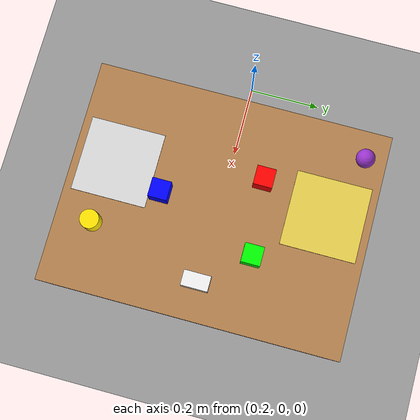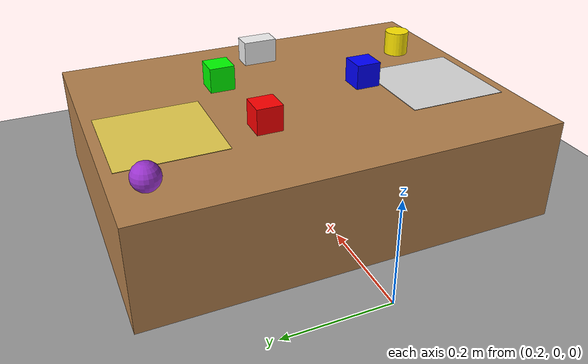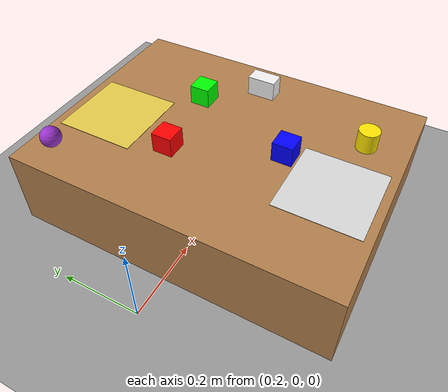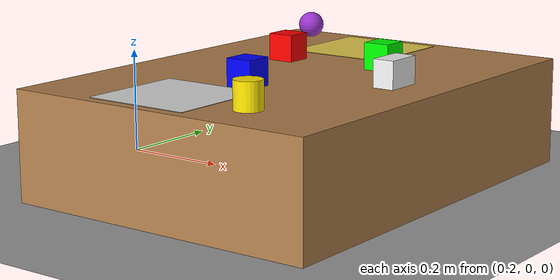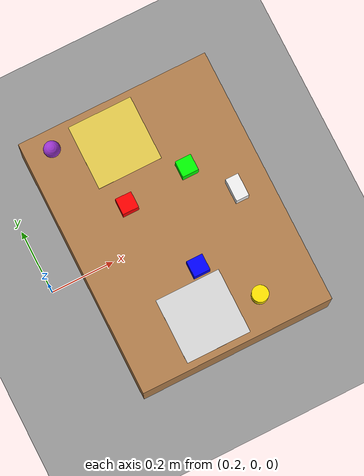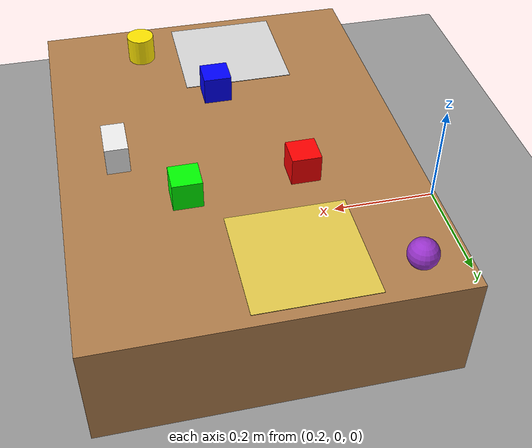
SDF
<?xml version="1.0"?>
<sdf version="1.9">
  <world name="pick_place">
    <physics name="fine" type="dart"><max_step_size>0.002</max_step_size></physics>
    <plugin filename="gz-sim-physics-system" name="gz::sim::systems::Physics"/>
    <plugin filename="gz-sim-user-commands-system" name="gz::sim::systems::UserCommands"/>
    <plugin filename="gz-sim-scene-broadcaster-system" name="gz::sim::systems::SceneBroadcaster"/>
    <plugin filename="gz-sim-sensors-system" name="gz::sim::systems::Sensors">
      <render_engine>ogre2</render_engine>
    </plugin>
    <light type="directional" name="sun">
      <pose>0 0 5 0 0 0</pose>
      <direction>-0.3 0.2 -1</direction>
      <diffuse>1 1 1 1</diffuse>
    </light>
    <model name="ground">
      <static>true</static>
      <link name="link">
        <collision name="c"><geometry><plane><normal>0 0 1</normal><size>10 10</size></plane></geometry></collision>
        <visual name="v"><geometry><plane><normal>0 0 1</normal><size>10 10</size></plane></geometry>
          <material><diffuse>0.6 0.6 0.6 1</diffuse></material></visual>
      </link>
    </model>
    <model name="table">
      <static>true</static>
      <pose>0.6 0 0.1 0 0 0</pose>
      <link name="link">
        <collision name="c"><geometry><box><size>0.6 0.8 0.2</size></box></geometry></collision>
        <visual name="v"><geometry><box><size>0.6 0.8 0.2</size></box></geometry>
          <material><diffuse>0.7 0.5 0.3 1</diffuse></material></visual>
      </link>
    </model>
    <!-- Zone pads: visual only (no collision), 0.20 x 0.20 m. Centres must match ZONE_CENTERS in agent.py.
         Colours are yellow / light grey so the red/green/blue detector ignores them. -->
    <model name="zone_left">
      <static>true</static>
      <pose>0.55 0.28 0.2005 0 0 0</pose>
      <link name="link">
        <visual name="v"><geometry><box><size>0.2 0.2 0.001</size></box></geometry>
          <material><diffuse>0.9 0.8 0.3 1</diffuse></material></visual>
      </link>
    </model>
    <model name="zone_right">
      <static>true</static>
      <pose>0.55 -0.28 0.2005 0 0 0</pose>
      <link name="link">
        <visual name="v"><geometry><box><size>0.2 0.2 0.001</size></box></geometry>
          <material><diffuse>0.85 0.85 0.85 1</diffuse></material></visual>
      </link>
    </model>
    <!-- All movable objects have gravity ON so they rest on the table or on each other and a disturbance dies out
         through friction. Heavy damping (velocity_decay) keeps knocks small. -->
    <model name="red_cube">
      <pose>0.5 0.1 0.225 0 0 0</pose>
      <link name="link">
        <gravity>true</gravity>
        <velocity_decay><linear>1.0</linear><angular>1.0</angular></velocity_decay>
        <inertial><mass>0.1</mass><inertia><ixx>4e-5</ixx><iyy>4e-5</iyy><izz>4e-5</izz></inertia></inertial>
        <collision name="c"><geometry><box><size>0.05 0.05 0.05</size></box></geometry>
          <surface>
            <friction><ode><mu>3.0</mu><mu2>3.0</mu2></ode></friction>
            <contact><ode><kp>1e6</kp><kd>100</kd><max_vel>0.1</max_vel><min_depth>0.001</min_depth></ode></contact>
          </surface></collision>
        <visual name="v"><geometry><box><size>0.05 0.05 0.05</size></box></geometry>
          <material><diffuse>1 0 0 1</diffuse></material></visual>
      </link>
    </model>
    <model name="blue_cube">
      <pose>0.6 -0.15 0.225 0 0 0</pose>
      <link name="link">
        <gravity>true</gravity>
        <velocity_decay><linear>1.0</linear><angular>1.0</angular></velocity_decay>
        <inertial><mass>0.1</mass><inertia><ixx>4e-5</ixx><iyy>4e-5</iyy><izz>4e-5</izz></inertia></inertial>
        <collision name="c"><geometry><box><size>0.05 0.05 0.05</size></box></geometry>
          <surface>
            <friction><ode><mu>3.0</mu><mu2>3.0</mu2></ode></friction>
            <contact><ode><kp>1e6</kp><kd>100</kd><max_vel>0.1</max_vel><min_depth>0.001</min_depth></ode></contact>
          </surface></collision>
        <visual name="v"><geometry><box><size>0.05 0.05 0.05</size></box></geometry>
          <material><diffuse>0 0 1 1</diffuse></material></visual>
      </link>
    </model>
    <model name="green_cube">
      <pose>0.7 0.12 0.225 0 0 0</pose>
      <link name="link">
        <gravity>true</gravity>
        <velocity_decay><linear>1.0</linear><angular>1.0</angular></velocity_decay>
        <inertial><mass>0.1</mass><inertia><ixx>4e-5</ixx><iyy>4e-5</iyy><izz>4e-5</izz></inertia></inertial>
        <collision name="c"><geometry><box><size>0.05 0.05 0.05</size></box></geometry>
          <surface>
            <friction><ode><mu>3.0</mu><mu2>3.0</mu2></ode></friction>
            <contact><ode><kp>1e6</kp><kd>100</kd><max_vel>0.1</max_vel><min_depth>0.001</min_depth></ode></contact>
          </surface></collision>
        <visual name="v"><geometry><box><size>0.05 0.05 0.05</size></box></geometry>
          <material><diffuse>0 1 0 1</diffuse></material></visual>
      </link>
    </model>
    <model name="yellow_can">
      <pose>0.72 -0.30 0.225 0 0 0</pose>
      <link name="link">
        <gravity>true</gravity>
        <velocity_decay><linear>1.0</linear><angular>1.0</angular></velocity_decay>
        <inertial><mass>0.1</mass><inertia><ixx>4e-5</ixx><iyy>4e-5</iyy><izz>4e-5</izz></inertia></inertial>
        <collision name="c"><geometry><cylinder><radius>0.025</radius><length>0.05</length></cylinder></geometry>
          <surface>
            <friction><ode><mu>3.0</mu><mu2>3.0</mu2></ode></friction>
            <contact><ode><kp>1e6</kp><kd>100</kd><max_vel>0.1</max_vel><min_depth>0.001</min_depth></ode></contact>
          </surface></collision>
        <visual name="v"><geometry><cylinder><radius>0.025</radius><length>0.05</length></cylinder></geometry>
          <material><diffuse>1 0.9 0 1</diffuse></material></visual>
      </link>
    </model>
    <model name="purple_ball">
      <pose>0.38 0.34 0.225 0 0 0</pose>
      <link name="link">
        <gravity>true</gravity>
        <velocity_decay><linear>1.0</linear><angular>1.0</angular></velocity_decay>
        <inertial><mass>0.1</mass><inertia><ixx>4e-5</ixx><iyy>4e-5</iyy><izz>4e-5</izz></inertia></inertial>
        <collision name="c"><geometry><cylinder><radius>0.025</radius><length>0.05</length></cylinder></geometry>
          <surface>
            <friction><ode><mu>3.0</mu><mu2>3.0</mu2></ode></friction>
            <contact><ode><kp>1e6</kp><kd>100</kd><max_vel>0.1</max_vel><min_depth>0.001</min_depth></ode></contact>
          </surface></collision>
        <visual name="v"><geometry><sphere><radius>0.025</radius></sphere></geometry>
          <material><diffuse>0.6 0.2 0.8 1</diffuse></material></visual>
      </link>
    </model>
    <model name="white_block">
      <pose>0.80 0.00 0.225 0 0 0</pose>
      <link name="link">
        <gravity>true</gravity>
        <velocity_decay><linear>1.0</linear><angular>1.0</angular></velocity_decay>
        <inertial><mass>0.1</mass><inertia><ixx>4e-5</ixx><iyy>4e-5</iyy><izz>4e-5</izz></inertia></inertial>
        <collision name="c"><geometry><box><size>0.04 0.07 0.05</size></box></geometry>
          <surface>
            <friction><ode><mu>3.0</mu><mu2>3.0</mu2></ode></friction>
            <contact><ode><kp>1e6</kp><kd>100</kd><max_vel>0.1</max_vel><min_depth>0.001</min_depth></ode></contact>
          </surface></collision>
        <visual name="v"><geometry><box><size>0.04 0.07 0.05</size></box></geometry>
          <material><diffuse>0.95 0.95 0.95 1</diffuse></material></visual>
      </link>
    </model>
    <model name="overhead_cam">
      <static>true</static>
      <pose>0.6 0 1.2 0 1.5708 0</pose>
      <link name="camera_link">
        <sensor name="rgbd" type="rgbd_camera">
          <update_rate>10</update_rate>
          <topic>overhead</topic>
          <gz_frame_id>camera_link</gz_frame_id>
          <camera>
            <horizontal_fov>1.05</horizontal_fov>
            <image><width>320</width><height>240</height></image>
            <clip><near>0.1</near><far>3.0</far></clip>
          </camera>
          <always_on>1</always_on>
        </sensor>
      </link>
    </model>
  </world>
</sdf>
